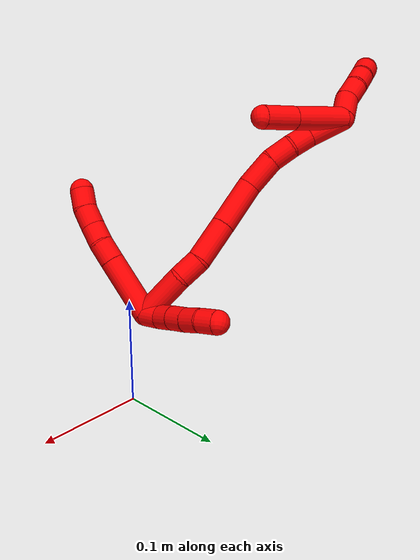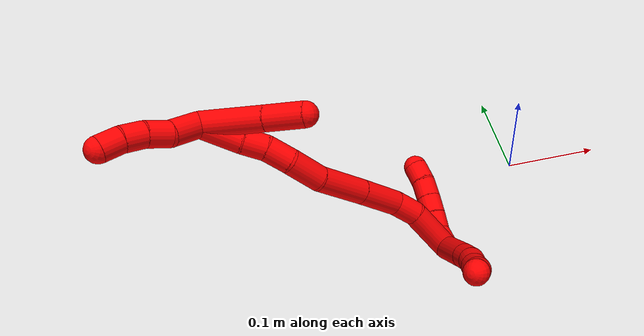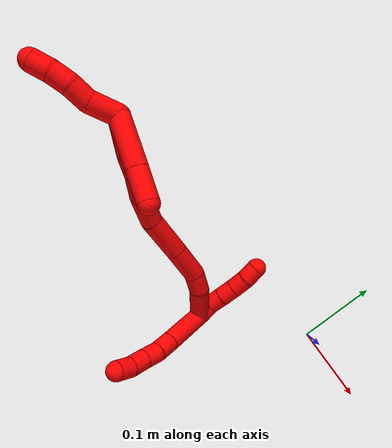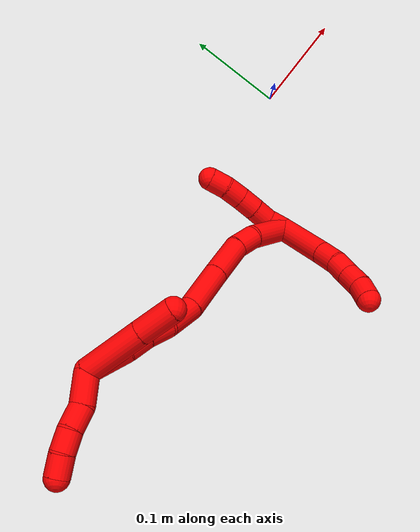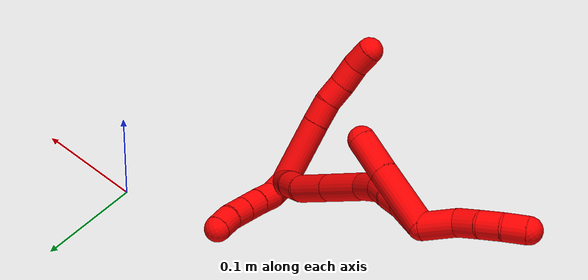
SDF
<sdf version="1.7">
 <world name="default">
  <model name="2">
   <static>0</static>
   <link name="2">
    <collision name="collision-cylinder-e_1_2_8">
     <pose>0.016877 -0.012979 0.024154 0.49307 0.55174 0.14224</pose>
     <geometry><cylinder><radius>0.0125</radius><length>0.064397</length></cylinder></geometry>
     <surface>
      <friction><ode><mu>1.16</mu><mu2>1.16</mu2><slip1>0</slip1><slip2>0</slip2></ode></friction>
      <contact><ode><kp>1e+06</kp><kd>1</kd><max_vel>0</max_vel><min_depth>0.001</min_depth></ode></contact>
     </surface>
    </collision>
    <visual name="visual-cylinder-e_1_2_8">
     <pose>0.016877 -0.012979 0.024154 0.49307 0.55174 0.14224</pose>
     <geometry><cylinder><radius>0.0125</radius><length>0.064397</length></cylinder></geometry>
     <material><ambient>1 0 0 1</ambient></material>
    </visual>
    <collision name="collision-cylinder-e_2_8_9">
     <pose>0.039417 -0.030623 0.056951 0.494927 0.522995 0.135021</pose>
     <geometry><cylinder><radius>0.0125</radius><length>0.022672</length></cylinder></geometry>
     <surface>
      <friction><ode><mu>1.16</mu><mu2>1.16</mu2><slip1>0</slip1><slip2>0</slip2></ode></friction>
      <contact><ode><kp>1e+06</kp><kd>1</kd><max_vel>0</max_vel><min_depth>0.001</min_depth></ode></contact>
     </surface>
    </collision>
    <visual name="visual-cylinder-e_2_8_9">
     <pose>0.039417 -0.030623 0.056951 0.494927 0.522995 0.135021</pose>
     <geometry><cylinder><radius>0.0125</radius><length>0.022672</length></cylinder></geometry>
     <material><ambient>1 0 0 1</ambient></material>
    </visual>
    <collision name="collision-cylinder-e_3_9_10">
     <pose>0.048563 -0.039375 0.074345 0.437 0.346146 0.077598</pose>
     <geometry><cylinder><radius>0.0125</radius><length>0.020538</length></cylinder></geometry>
     <surface>
      <friction><ode><mu>1.16</mu><mu2>1.16</mu2><slip1>0</slip1><slip2>0</slip2></ode></friction>
      <contact><ode><kp>1e+06</kp><kd>1</kd><max_vel>0</max_vel><min_depth>0.001</min_depth></ode></contact>
     </surface>
    </collision>
    <visual name="visual-cylinder-e_3_9_10">
     <pose>0.048563 -0.039375 0.074345 0.437 0.346146 0.077598</pose>
     <geometry><cylinder><radius>0.0125</radius><length>0.020538</length></cylinder></geometry>
     <material><ambient>1 0 0 1</ambient></material>
    </visual>
    <collision name="collision-cylinder-e_4_10_11">
     <pose>0.056585 -0.04706 0.092208 0.375941 0.433829 0.083791</pose>
     <geometry><cylinder><radius>0.0125</radius><length>0.02159</length></cylinder></geometry>
     <surface>
      <friction><ode><mu>1.16</mu><mu2>1.16</mu2><slip1>0</slip1><slip2>0</slip2></ode></friction>
      <contact><ode><kp>1e+06</kp><kd>1</kd><max_vel>0</max_vel><min_depth>0.001</min_depth></ode></contact>
     </surface>
    </collision>
    <visual name="visual-cylinder-e_4_10_11">
     <pose>0.056585 -0.04706 0.092208 0.375941 0.433829 0.083791</pose>
     <geometry><cylinder><radius>0.0125</radius><length>0.02159</length></cylinder></geometry>
     <material><ambient>1 0 0 1</ambient></material>
    </visual>
    <collision name="collision-cylinder-e_5_11_6">
     <pose>0.064417 -0.05215 0.111072 0.152048 0.322289 0.024762</pose>
     <geometry><cylinder><radius>0.0125</radius><length>0.020803</length></cylinder></geometry>
     <surface>
      <friction><ode><mu>1.16</mu><mu2>1.16</mu2><slip1>0</slip1><slip2>0</slip2></ode></friction>
      <contact><ode><kp>1e+06</kp><kd>1</kd><max_vel>0</max_vel><min_depth>0.001</min_depth></ode></contact>
     </surface>
    </collision>
    <visual name="visual-cylinder-e_5_11_6">
     <pose>0.064417 -0.05215 0.111072 0.152048 0.322289 0.024762</pose>
     <geometry><cylinder><radius>0.0125</radius><length>0.020803</length></cylinder></geometry>
     <material><ambient>1 0 0 1</ambient></material>
    </visual>
    <collision name="collision-cylinder-e_1_2_12">
     <pose>-0.000356 0.009503 -0.003093 -1.88544 -0.035581 0.048993</pose>
     <geometry><cylinder><radius>0.0125</radius><length>0.02</length></cylinder></geometry>
     <surface>
      <friction><ode><mu>1.16</mu><mu2>1.16</mu2><slip1>0</slip1><slip2>0</slip2></ode></friction>
      <contact><ode><kp>1e+06</kp><kd>1</kd><max_vel>0</max_vel><min_depth>0.001</min_depth></ode></contact>
     </surface>
    </collision>
    <visual name="visual-cylinder-e_1_2_12">
     <pose>-0.000356 0.009503 -0.003093 -1.88544 -0.035581 0.048993</pose>
     <geometry><cylinder><radius>0.0125</radius><length>0.02</length></cylinder></geometry>
     <material><ambient>1 0 0 1</ambient></material>
    </visual>
    <collision name="collision-cylinder-e_2_12_13">
     <pose>0.001521 0.028246 -0.009291 -1.89504 0.225188 -0.312028</pose>
     <geometry><cylinder><radius>0.0125</radius><length>0.02</length></cylinder></geometry>
     <surface>
      <friction><ode><mu>1.16</mu><mu2>1.16</mu2><slip1>0</slip1><slip2>0</slip2></ode></friction>
      <contact><ode><kp>1e+06</kp><kd>1</kd><max_vel>0</max_vel><min_depth>0.001</min_depth></ode></contact>
     </surface>
    </collision>
    <visual name="visual-cylinder-e_2_12_13">
     <pose>0.001521 0.028246 -0.009291 -1.89504 0.225188 -0.312028</pose>
     <geometry><cylinder><radius>0.0125</radius><length>0.02</length></cylinder></geometry>
     <material><ambient>1 0 0 1</ambient></material>
    </visual>
    <collision name="collision-cylinder-e_3_13_14">
     <pose>0.005555 0.046759 -0.015675 -1.91058 0.181104 -0.255412</pose>
     <geometry><cylinder><radius>0.0125</radius><length>0.02</length></cylinder></geometry>
     <surface>
      <friction><ode><mu>1.16</mu><mu2>1.16</mu2><slip1>0</slip1><slip2>0</slip2></ode></friction>
      <contact><ode><kp>1e+06</kp><kd>1</kd><max_vel>0</max_vel><min_depth>0.001</min_depth></ode></contact>
     </surface>
    </collision>
    <visual name="visual-cylinder-e_3_13_14">
     <pose>0.005555 0.046759 -0.015675 -1.91058 0.181104 -0.255412</pose>
     <geometry><cylinder><radius>0.0125</radius><length>0.02</length></cylinder></geometry>
     <material><ambient>1 0 0 1</ambient></material>
    </visual>
    <collision name="collision-cylinder-e_4_14_15">
     <pose>0.00923 0.065503 -0.021565 -1.83994 0.188484 -0.246985</pose>
     <geometry><cylinder><radius>0.0125</radius><length>0.02</length></cylinder></geometry>
     <surface>
      <friction><ode><mu>1.16</mu><mu2>1.16</mu2><slip1>0</slip1><slip2>0</slip2></ode></friction>
      <contact><ode><kp>1e+06</kp><kd>1</kd><max_vel>0</max_vel><min_depth>0.001</min_depth></ode></contact>
     </surface>
    </collision>
    <visual name="visual-cylinder-e_4_14_15">
     <pose>0.00923 0.065503 -0.021565 -1.83994 0.188484 -0.246985</pose>
     <geometry><cylinder><radius>0.0125</radius><length>0.02</length></cylinder></geometry>
     <material><ambient>1 0 0 1</ambient></material>
    </visual>
    <collision name="collision-cylinder-e_5_15_5">
     <pose>0.011247 0.084649 -0.026694 -1.82527 0.014296 -0.01849</pose>
     <geometry><cylinder><radius>0.0125</radius><length>0.02</length></cylinder></geometry>
     <surface>
      <friction><ode><mu>1.16</mu><mu2>1.16</mu2><slip1>0</slip1><slip2>0</slip2></ode></friction>
      <contact><ode><kp>1e+06</kp><kd>1</kd><max_vel>0</max_vel><min_depth>0.001</min_depth></ode></contact>
     </surface>
    </collision>
    <visual name="visual-cylinder-e_5_15_5">
     <pose>0.011247 0.084649 -0.026694 -1.82527 0.014296 -0.01849</pose>
     <geometry><cylinder><radius>0.0125</radius><length>0.02</length></cylinder></geometry>
     <material><ambient>1 0 0 1</ambient></material>
    </visual>
    <collision name="collision-cylinder-e_1_2_16">
     <pose>0.00378 0.021214 0.015333 -0.944963 0.143418 -0.073392</pose>
     <geometry><cylinder><radius>0.0125</radius><length>0.052893</length></cylinder></geometry>
     <surface>
      <friction><ode><mu>1.16</mu><mu2>1.16</mu2><slip1>0</slip1><slip2>0</slip2></ode></friction>
      <contact><ode><kp>1e+06</kp><kd>1</kd><max_vel>0</max_vel><min_depth>0.001</min_depth></ode></contact>
     </surface>
    </collision>
    <visual name="visual-cylinder-e_1_2_16">
     <pose>0.00378 0.021214 0.015333 -0.944963 0.143418 -0.073392</pose>
     <geometry><cylinder><radius>0.0125</radius><length>0.052893</length></cylinder></geometry>
     <material><ambient>1 0 0 1</ambient></material>
    </visual>
    <collision name="collision-cylinder-e_2_16_17">
     <pose>0.00616 0.05154 0.039436 -0.804463 -0.110269 0.04695</pose>
     <geometry><cylinder><radius>0.0125</radius><length>0.025448</length></cylinder></geometry>
     <surface>
      <friction><ode><mu>1.16</mu><mu2>1.16</mu2><slip1>0</slip1><slip2>0</slip2></ode></friction>
      <contact><ode><kp>1e+06</kp><kd>1</kd><max_vel>0</max_vel><min_depth>0.001</min_depth></ode></contact>
     </surface>
    </collision>
    <visual name="visual-cylinder-e_2_16_17">
     <pose>0.00616 0.05154 0.039436 -0.804463 -0.110269 0.04695</pose>
     <geometry><cylinder><radius>0.0125</radius><length>0.025448</length></cylinder></geometry>
     <material><ambient>1 0 0 1</ambient></material>
    </visual>
    <collision name="collision-cylinder-e_3_17_18">
     <pose>0.002717 0.071593 0.067598 -0.513721 -0.091454 0.024037</pose>
     <geometry><cylinder><radius>0.0125</radius><length>0.044718</length></cylinder></geometry>
     <surface>
      <friction><ode><mu>1.16</mu><mu2>1.16</mu2><slip1>0</slip1><slip2>0</slip2></ode></friction>
      <contact><ode><kp>1e+06</kp><kd>1</kd><max_vel>0</max_vel><min_depth>0.001</min_depth></ode></contact>
     </surface>
    </collision>
    <visual name="visual-cylinder-e_3_17_18">
     <pose>0.002717 0.071593 0.067598 -0.513721 -0.091454 0.024037</pose>
     <geometry><cylinder><radius>0.0125</radius><length>0.044718</length></cylinder></geometry>
     <material><ambient>1 0 0 1</ambient></material>
    </visual>
    <collision name="collision-cylinder-e_4_18_19">
     <pose>-0.001893 0.094754 0.109517 -0.496986 -0.099869 0.02536</pose>
     <geometry><cylinder><radius>0.0125</radius><length>0.051512</length></cylinder></geometry>
     <surface>
      <friction><ode><mu>1.16</mu><mu2>1.16</mu2><slip1>0</slip1><slip2>0</slip2></ode></friction>
      <contact><ode><kp>1e+06</kp><kd>1</kd><max_vel>0</max_vel><min_depth>0.001</min_depth></ode></contact>
     </surface>
    </collision>
    <visual name="visual-cylinder-e_4_18_19">
     <pose>-0.001893 0.094754 0.109517 -0.496986 -0.099869 0.02536</pose>
     <geometry><cylinder><radius>0.0125</radius><length>0.051512</length></cylinder></geometry>
     <material><ambient>1 0 0 1</ambient></material>
    </visual>
    <collision name="collision-cylinder-e_5_19_20">
     <pose>-0.004697 0.118763 0.145216 -0.730116 -0.013382 0.005115</pose>
     <geometry><cylinder><radius>0.0125</radius><length>0.035358</length></cylinder></geometry>
     <surface>
      <friction><ode><mu>1.16</mu><mu2>1.16</mu2><slip1>0</slip1><slip2>0</slip2></ode></friction>
      <contact><ode><kp>1e+06</kp><kd>1</kd><max_vel>0</max_vel><min_depth>0.001</min_depth></ode></contact>
     </surface>
    </collision>
    <visual name="visual-cylinder-e_5_19_20">
     <pose>-0.004697 0.118763 0.145216 -0.730116 -0.013382 0.005115</pose>
     <geometry><cylinder><radius>0.0125</radius><length>0.035358</length></cylinder></geometry>
     <material><ambient>1 0 0 1</ambient></material>
    </visual>
    <collision name="collision-cylinder-e_6_20_21">
     <pose>-0.007072 0.140562 0.166001 -0.920513 -0.16841 0.083642</pose>
     <geometry><cylinder><radius>0.0125</radius><length>0.025512</length></cylinder></geometry>
     <surface>
      <friction><ode><mu>1.16</mu><mu2>1.16</mu2><slip1>0</slip1><slip2>0</slip2></ode></friction>
      <contact><ode><kp>1e+06</kp><kd>1</kd><max_vel>0</max_vel><min_depth>0.001</min_depth></ode></contact>
     </surface>
    </collision>
    <visual name="visual-cylinder-e_6_20_21">
     <pose>-0.007072 0.140562 0.166001 -0.920513 -0.16841 0.083642</pose>
     <geometry><cylinder><radius>0.0125</radius><length>0.025512</length></cylinder></geometry>
     <material><ambient>1 0 0 1</ambient></material>
    </visual>
    <collision name="collision-cylinder-e_7_21_22">
     <pose>-0.013237 0.158214 0.180826 -0.814444 -0.36595 0.159294</pose>
     <geometry><cylinder><radius>0.0125</radius><length>0.022507</length></cylinder></geometry>
     <surface>
      <friction><ode><mu>1.16</mu><mu2>1.16</mu2><slip1>0</slip1><slip2>0</slip2></ode></friction>
      <contact><ode><kp>1e+06</kp><kd>1</kd><max_vel>0</max_vel><min_depth>0.001</min_depth></ode></contact>
     </surface>
    </collision>
    <visual name="visual-cylinder-e_7_21_22">
     <pose>-0.013237 0.158214 0.180826 -0.814444 -0.36595 0.159294</pose>
     <geometry><cylinder><radius>0.0125</radius><length>0.022507</length></cylinder></geometry>
     <material><ambient>1 0 0 1</ambient></material>
    </visual>
    <collision name="collision-cylinder-e_8_22_1">
     <pose>-0.024547 0.181867 0.199557 -0.947083 -0.353726 0.182664</pose>
     <geometry><cylinder><radius>0.0125</radius><length>0.042051</length></cylinder></geometry>
     <surface>
      <friction><ode><mu>1.16</mu><mu2>1.16</mu2><slip1>0</slip1><slip2>0</slip2></ode></friction>
      <contact><ode><kp>1e+06</kp><kd>1</kd><max_vel>0</max_vel><min_depth>0.001</min_depth></ode></contact>
     </surface>
    </collision>
    <visual name="visual-cylinder-e_8_22_1">
     <pose>-0.024547 0.181867 0.199557 -0.947083 -0.353726 0.182664</pose>
     <geometry><cylinder><radius>0.0125</radius><length>0.042051</length></cylinder></geometry>
     <material><ambient>1 0 0 1</ambient></material>
    </visual>
    <collision name="collision-cylinder-e_1_1_23">
     <pose>-0.007723 0.181681 0.19997 2.1719 0.887189 1.46788</pose>
     <geometry><cylinder><radius>0.0125</radius><length>0.062187</length></cylinder></geometry>
     <surface>
      <friction><ode><mu>1.16</mu><mu2>1.16</mu2><slip1>0</slip1><slip2>0</slip2></ode></friction>
      <contact><ode><kp>1e+06</kp><kd>1</kd><max_vel>0</max_vel><min_depth>0.001</min_depth></ode></contact>
     </surface>
    </collision>
    <visual name="visual-cylinder-e_1_1_23">
     <pose>-0.007723 0.181681 0.19997 2.1719 0.887189 1.46788</pose>
     <geometry><cylinder><radius>0.0125</radius><length>0.062187</length></cylinder></geometry>
     <material><ambient>1 0 0 1</ambient></material>
    </visual>
    <collision name="collision-cylinder-e_2_23_4">
     <pose>0.031198 0.155652 0.182437 2.14966 0.900372 1.45808</pose>
     <geometry><cylinder><radius>0.0125</radius><length>0.037813</length></cylinder></geometry>
     <surface>
      <friction><ode><mu>1.16</mu><mu2>1.16</mu2><slip1>0</slip1><slip2>0</slip2></ode></friction>
      <contact><ode><kp>1e+06</kp><kd>1</kd><max_vel>0</max_vel><min_depth>0.001</min_depth></ode></contact>
     </surface>
    </collision>
    <visual name="visual-cylinder-e_2_23_4">
     <pose>0.031198 0.155652 0.182437 2.14966 0.900372 1.45808</pose>
     <geometry><cylinder><radius>0.0125</radius><length>0.037813</length></cylinder></geometry>
     <material><ambient>1 0 0 1</ambient></material>
    </visual>
    <collision name="collision-cylinder-e_1_1_24">
     <pose>-0.036888 0.197183 0.226876 0.043934 -0.309561 -0.006856</pose>
     <geometry><cylinder><radius>0.0125</radius><length>0.033208</length></cylinder></geometry>
     <surface>
      <friction><ode><mu>1.16</mu><mu2>1.16</mu2><slip1>0</slip1><slip2>0</slip2></ode></friction>
      <contact><ode><kp>1e+06</kp><kd>1</kd><max_vel>0</max_vel><min_depth>0.001</min_depth></ode></contact>
     </surface>
    </collision>
    <visual name="visual-cylinder-e_1_1_24">
     <pose>-0.036888 0.197183 0.226876 0.043934 -0.309561 -0.006856</pose>
     <geometry><cylinder><radius>0.0125</radius><length>0.033208</length></cylinder></geometry>
     <material><ambient>1 0 0 1</ambient></material>
    </visual>
    <collision name="collision-cylinder-e_2_24_25">
     <pose>-0.045701 0.199817 0.253323 -0.30305 -0.324626 0.049998</pose>
     <geometry><cylinder><radius>0.0125</radius><length>0.023539</length></cylinder></geometry>
     <surface>
      <friction><ode><mu>1.16</mu><mu2>1.16</mu2><slip1>0</slip1><slip2>0</slip2></ode></friction>
      <contact><ode><kp>1e+06</kp><kd>1</kd><max_vel>0</max_vel><min_depth>0.001</min_depth></ode></contact>
     </surface>
    </collision>
    <visual name="visual-cylinder-e_2_24_25">
     <pose>-0.045701 0.199817 0.253323 -0.30305 -0.324626 0.049998</pose>
     <geometry><cylinder><radius>0.0125</radius><length>0.023539</length></cylinder></geometry>
     <material><ambient>1 0 0 1</ambient></material>
    </visual>
    <collision name="collision-cylinder-e_3_25_26">
     <pose>-0.054097 0.204407 0.273642 -0.129637 -0.444242 0.029317</pose>
     <geometry><cylinder><radius>0.0125</radius><length>0.021606</length></cylinder></geometry>
     <surface>
      <friction><ode><mu>1.16</mu><mu2>1.16</mu2><slip1>0</slip1><slip2>0</slip2></ode></friction>
      <contact><ode><kp>1e+06</kp><kd>1</kd><max_vel>0</max_vel><min_depth>0.001</min_depth></ode></contact>
     </surface>
    </collision>
    <visual name="visual-cylinder-e_3_25_26">
     <pose>-0.054097 0.204407 0.273642 -0.129637 -0.444242 0.029317</pose>
     <geometry><cylinder><radius>0.0125</radius><length>0.021606</length></cylinder></geometry>
     <material><ambient>1 0 0 1</ambient></material>
    </visual>
    <collision name="collision-cylinder-e_4_26_3">
     <pose>-0.064529 0.205338 0.292453 0.036171 -0.564374 -0.010488</pose>
     <geometry><cylinder><radius>0.0125</radius><length>0.021647</length></cylinder></geometry>
     <surface>
      <friction><ode><mu>1.16</mu><mu2>1.16</mu2><slip1>0</slip1><slip2>0</slip2></ode></friction>
      <contact><ode><kp>1e+06</kp><kd>1</kd><max_vel>0</max_vel><min_depth>0.001</min_depth></ode></contact>
     </surface>
    </collision>
    <visual name="visual-cylinder-e_4_26_3">
     <pose>-0.064529 0.205338 0.292453 0.036171 -0.564374 -0.010488</pose>
     <geometry><cylinder><radius>0.0125</radius><length>0.021647</length></cylinder></geometry>
     <material><ambient>1 0 0 1</ambient></material>
    </visual>
    <collision name="collision-sphere-3">
     <pose>-0.070319 0.205007 0.301592 0 -0 0</pose>
     <geometry><sphere><radius>0.0125</radius></sphere></geometry>
     <surface>
      <friction><ode><mu>1.16</mu><mu2>1.16</mu2><slip1>0</slip1><slip2>0</slip2></ode></friction>
      <contact><ode><kp>1e+06</kp><kd>1</kd><max_vel>0</max_vel><min_depth>0.001</min_depth></ode></contact>
     </surface>
    </collision>
    <visual name="visual-sphere-3">
     <pose>-0.070319 0.205007 0.301592 0 -0 0</pose>
     <geometry><sphere><radius>0.0125</radius></sphere></geometry>
     <material><ambient>1 0 0 1</ambient></material>
    </visual>
    <collision name="collision-sphere-26">
     <pose>-0.05874 0.205668 0.283314 0 -0 0</pose>
     <geometry><sphere><radius>0.0125</radius></sphere></geometry>
     <surface>
      <friction><ode><mu>1.16</mu><mu2>1.16</mu2><slip1>0</slip1><slip2>0</slip2></ode></friction>
      <contact><ode><kp>1e+06</kp><kd>1</kd><max_vel>0</max_vel><min_depth>0.001</min_depth></ode></contact>
     </surface>
    </collision>
    <visual name="visual-sphere-26">
     <pose>-0.05874 0.205668 0.283314 0 -0 0</pose>
     <geometry><sphere><radius>0.0125</radius></sphere></geometry>
     <material><ambient>1 0 0 1</ambient></material>
    </visual>
    <collision name="collision-sphere-25">
     <pose>-0.049455 0.203146 0.263969 0 -0 0</pose>
     <geometry><sphere><radius>0.0125</radius></sphere></geometry>
     <surface>
      <friction><ode><mu>1.16</mu><mu2>1.16</mu2><slip1>0</slip1><slip2>0</slip2></ode></friction>
      <contact><ode><kp>1e+06</kp><kd>1</kd><max_vel>0</max_vel><min_depth>0.001</min_depth></ode></contact>
     </surface>
    </collision>
    <visual name="visual-sphere-25">
     <pose>-0.049455 0.203146 0.263969 0 -0 0</pose>
     <geometry><sphere><radius>0.0125</radius></sphere></geometry>
     <material><ambient>1 0 0 1</ambient></material>
    </visual>
    <collision name="collision-sphere-24">
     <pose>-0.041947 0.196488 0.242676 0 -0 0</pose>
     <geometry><sphere><radius>0.0125</radius></sphere></geometry>
     <surface>
      <friction><ode><mu>1.16</mu><mu2>1.16</mu2><slip1>0</slip1><slip2>0</slip2></ode></friction>
      <contact><ode><kp>1e+06</kp><kd>1</kd><max_vel>0</max_vel><min_depth>0.001</min_depth></ode></contact>
     </surface>
    </collision>
    <visual name="visual-sphere-24">
     <pose>-0.041947 0.196488 0.242676 0 -0 0</pose>
     <geometry><sphere><radius>0.0125</radius></sphere></geometry>
     <material><ambient>1 0 0 1</ambient></material>
    </visual>
    <collision name="collision-sphere-4">
     <pose>0.046012 0.145819 0.176011 0 -0 0</pose>
     <geometry><sphere><radius>0.0125</radius></sphere></geometry>
     <surface>
      <friction><ode><mu>1.16</mu><mu2>1.16</mu2><slip1>0</slip1><slip2>0</slip2></ode></friction>
      <contact><ode><kp>1e+06</kp><kd>1</kd><max_vel>0</max_vel><min_depth>0.001</min_depth></ode></contact>
     </surface>
    </collision>
    <visual name="visual-sphere-4">
     <pose>0.046012 0.145819 0.176011 0 -0 0</pose>
     <geometry><sphere><radius>0.0125</radius></sphere></geometry>
     <material><ambient>1 0 0 1</ambient></material>
    </visual>
    <collision name="collision-sphere-23">
     <pose>0.016383 0.165485 0.188864 0 -0 0</pose>
     <geometry><sphere><radius>0.0125</radius></sphere></geometry>
     <surface>
      <friction><ode><mu>1.16</mu><mu2>1.16</mu2><slip1>0</slip1><slip2>0</slip2></ode></friction>
      <contact><ode><kp>1e+06</kp><kd>1</kd><max_vel>0</max_vel><min_depth>0.001</min_depth></ode></contact>
     </surface>
    </collision>
    <visual name="visual-sphere-23">
     <pose>0.016383 0.165485 0.188864 0 -0 0</pose>
     <geometry><sphere><radius>0.0125</radius></sphere></geometry>
     <material><ambient>1 0 0 1</ambient></material>
    </visual>
    <collision name="collision-sphere-1">
     <pose>-0.03183 0.197877 0.211077 0 -0 0</pose>
     <geometry><sphere><radius>0.0125</radius></sphere></geometry>
     <surface>
      <friction><ode><mu>1.16</mu><mu2>1.16</mu2><slip1>0</slip1><slip2>0</slip2></ode></friction>
      <contact><ode><kp>1e+06</kp><kd>1</kd><max_vel>0</max_vel><min_depth>0.001</min_depth></ode></contact>
     </surface>
    </collision>
    <visual name="visual-sphere-1">
     <pose>-0.03183 0.197877 0.211077 0 -0 0</pose>
     <geometry><sphere><radius>0.0125</radius></sphere></geometry>
     <material><ambient>1 0 0 1</ambient></material>
    </visual>
    <collision name="collision-sphere-22">
     <pose>-0.017264 0.165857 0.188037 0 -0 0</pose>
     <geometry><sphere><radius>0.0125</radius></sphere></geometry>
     <surface>
      <friction><ode><mu>1.16</mu><mu2>1.16</mu2><slip1>0</slip1><slip2>0</slip2></ode></friction>
      <contact><ode><kp>1e+06</kp><kd>1</kd><max_vel>0</max_vel><min_depth>0.001</min_depth></ode></contact>
     </surface>
    </collision>
    <visual name="visual-sphere-22">
     <pose>-0.017264 0.165857 0.188037 0 -0 0</pose>
     <geometry><sphere><radius>0.0125</radius></sphere></geometry>
     <material><ambient>1 0 0 1</ambient></material>
    </visual>
    <collision name="collision-sphere-21">
     <pose>-0.00921 0.150571 0.173614 0 -0 0</pose>
     <geometry><sphere><radius>0.0125</radius></sphere></geometry>
     <surface>
      <friction><ode><mu>1.16</mu><mu2>1.16</mu2><slip1>0</slip1><slip2>0</slip2></ode></friction>
      <contact><ode><kp>1e+06</kp><kd>1</kd><max_vel>0</max_vel><min_depth>0.001</min_depth></ode></contact>
     </surface>
    </collision>
    <visual name="visual-sphere-21">
     <pose>-0.00921 0.150571 0.173614 0 -0 0</pose>
     <geometry><sphere><radius>0.0125</radius></sphere></geometry>
     <material><ambient>1 0 0 1</ambient></material>
    </visual>
    <collision name="collision-sphere-6">
     <pose>0.067711 -0.053645 0.120824 0 -0 0</pose>
     <geometry><sphere><radius>0.0125</radius></sphere></geometry>
     <surface>
      <friction><ode><mu>1.16</mu><mu2>1.16</mu2><slip1>0</slip1><slip2>0</slip2></ode></friction>
      <contact><ode><kp>1e+06</kp><kd>1</kd><max_vel>0</max_vel><min_depth>0.001</min_depth></ode></contact>
     </surface>
    </collision>
    <visual name="visual-sphere-6">
     <pose>0.067711 -0.053645 0.120824 0 -0 0</pose>
     <geometry><sphere><radius>0.0125</radius></sphere></geometry>
     <material><ambient>1 0 0 1</ambient></material>
    </visual>
    <collision name="collision-sphere-11">
     <pose>0.061122 -0.050656 0.101319 0 -0 0</pose>
     <geometry><sphere><radius>0.0125</radius></sphere></geometry>
     <surface>
      <friction><ode><mu>1.16</mu><mu2>1.16</mu2><slip1>0</slip1><slip2>0</slip2></ode></friction>
      <contact><ode><kp>1e+06</kp><kd>1</kd><max_vel>0</max_vel><min_depth>0.001</min_depth></ode></contact>
     </surface>
    </collision>
    <visual name="visual-sphere-11">
     <pose>0.061122 -0.050656 0.101319 0 -0 0</pose>
     <geometry><sphere><radius>0.0125</radius></sphere></geometry>
     <material><ambient>1 0 0 1</ambient></material>
    </visual>
    <collision name="collision-sphere-10">
     <pose>0.052047 -0.043464 0.083097 0 -0 0</pose>
     <geometry><sphere><radius>0.0125</radius></sphere></geometry>
     <surface>
      <friction><ode><mu>1.16</mu><mu2>1.16</mu2><slip1>0</slip1><slip2>0</slip2></ode></friction>
      <contact><ode><kp>1e+06</kp><kd>1</kd><max_vel>0</max_vel><min_depth>0.001</min_depth></ode></contact>
     </surface>
    </collision>
    <visual name="visual-sphere-10">
     <pose>0.052047 -0.043464 0.083097 0 -0 0</pose>
     <geometry><sphere><radius>0.0125</radius></sphere></geometry>
     <material><ambient>1 0 0 1</ambient></material>
    </visual>
    <collision name="collision-sphere-9">
     <pose>0.045079 -0.035287 0.065593 0 -0 0</pose>
     <geometry><sphere><radius>0.0125</radius></sphere></geometry>
     <surface>
      <friction><ode><mu>1.16</mu><mu2>1.16</mu2><slip1>0</slip1><slip2>0</slip2></ode></friction>
      <contact><ode><kp>1e+06</kp><kd>1</kd><max_vel>0</max_vel><min_depth>0.001</min_depth></ode></contact>
     </surface>
    </collision>
    <visual name="visual-sphere-9">
     <pose>0.045079 -0.035287 0.065593 0 -0 0</pose>
     <geometry><sphere><radius>0.0125</radius></sphere></geometry>
     <material><ambient>1 0 0 1</ambient></material>
    </visual>
    <collision name="collision-sphere-2">
     <geometry><sphere><radius>0.0125</radius></sphere></geometry>
     <surface>
      <friction><ode><mu>1.16</mu><mu2>1.16</mu2><slip1>0</slip1><slip2>0</slip2></ode></friction>
      <contact><ode><kp>1e+06</kp><kd>1</kd><max_vel>0</max_vel><min_depth>0.001</min_depth></ode></contact>
     </surface>
    </collision>
    <visual name="visual-sphere-2">
     <geometry><sphere><radius>0.0125</radius></sphere></geometry>
     <material><ambient>1 0 0 1</ambient></material>
    </visual>
    <collision name="collision-sphere-19">
     <pose>-0.004461 0.106973 0.132045 0 -0 0</pose>
     <geometry><sphere><radius>0.0125</radius></sphere></geometry>
     <surface>
      <friction><ode><mu>1.16</mu><mu2>1.16</mu2><slip1>0</slip1><slip2>0</slip2></ode></friction>
      <contact><ode><kp>1e+06</kp><kd>1</kd><max_vel>0</max_vel><min_depth>0.001</min_depth></ode></contact>
     </surface>
    </collision>
    <visual name="visual-sphere-19">
     <pose>-0.004461 0.106973 0.132045 0 -0 0</pose>
     <geometry><sphere><radius>0.0125</radius></sphere></geometry>
     <material><ambient>1 0 0 1</ambient></material>
    </visual>
    <collision name="collision-sphere-8">
     <pose>0.033755 -0.025958 0.048309 0 -0 0</pose>
     <geometry><sphere><radius>0.0125</radius></sphere></geometry>
     <surface>
      <friction><ode><mu>1.16</mu><mu2>1.16</mu2><slip1>0</slip1><slip2>0</slip2></ode></friction>
      <contact><ode><kp>1e+06</kp><kd>1</kd><max_vel>0</max_vel><min_depth>0.001</min_depth></ode></contact>
     </surface>
    </collision>
    <visual name="visual-sphere-8">
     <pose>0.033755 -0.025958 0.048309 0 -0 0</pose>
     <geometry><sphere><radius>0.0125</radius></sphere></geometry>
     <material><ambient>1 0 0 1</ambient></material>
    </visual>
    <collision name="collision-sphere-12">
     <pose>-0.000711 0.019006 -0.006186 0 -0 0</pose>
     <geometry><sphere><radius>0.0125</radius></sphere></geometry>
     <surface>
      <friction><ode><mu>1.16</mu><mu2>1.16</mu2><slip1>0</slip1><slip2>0</slip2></ode></friction>
      <contact><ode><kp>1e+06</kp><kd>1</kd><max_vel>0</max_vel><min_depth>0.001</min_depth></ode></contact>
     </surface>
    </collision>
    <visual name="visual-sphere-12">
     <pose>-0.000711 0.019006 -0.006186 0 -0 0</pose>
     <geometry><sphere><radius>0.0125</radius></sphere></geometry>
     <material><ambient>1 0 0 1</ambient></material>
    </visual>
    <collision name="collision-sphere-13">
     <pose>0.003754 0.037485 -0.012397 0 -0 0</pose>
     <geometry><sphere><radius>0.0125</radius></sphere></geometry>
     <surface>
      <friction><ode><mu>1.16</mu><mu2>1.16</mu2><slip1>0</slip1><slip2>0</slip2></ode></friction>
      <contact><ode><kp>1e+06</kp><kd>1</kd><max_vel>0</max_vel><min_depth>0.001</min_depth></ode></contact>
     </surface>
    </collision>
    <visual name="visual-sphere-13">
     <pose>0.003754 0.037485 -0.012397 0 -0 0</pose>
     <geometry><sphere><radius>0.0125</radius></sphere></geometry>
     <material><ambient>1 0 0 1</ambient></material>
    </visual>
    <collision name="collision-sphere-14">
     <pose>0.007357 0.056033 -0.018953 0 -0 0</pose>
     <geometry><sphere><radius>0.0125</radius></sphere></geometry>
     <surface>
      <friction><ode><mu>1.16</mu><mu2>1.16</mu2><slip1>0</slip1><slip2>0</slip2></ode></friction>
      <contact><ode><kp>1e+06</kp><kd>1</kd><max_vel>0</max_vel><min_depth>0.001</min_depth></ode></contact>
     </surface>
    </collision>
    <visual name="visual-sphere-14">
     <pose>0.007357 0.056033 -0.018953 0 -0 0</pose>
     <geometry><sphere><radius>0.0125</radius></sphere></geometry>
     <material><ambient>1 0 0 1</ambient></material>
    </visual>
    <collision name="collision-sphere-15">
     <pose>0.011104 0.074972 -0.024177 0 -0 0</pose>
     <geometry><sphere><radius>0.0125</radius></sphere></geometry>
     <surface>
      <friction><ode><mu>1.16</mu><mu2>1.16</mu2><slip1>0</slip1><slip2>0</slip2></ode></friction>
      <contact><ode><kp>1e+06</kp><kd>1</kd><max_vel>0</max_vel><min_depth>0.001</min_depth></ode></contact>
     </surface>
    </collision>
    <visual name="visual-sphere-15">
     <pose>0.011104 0.074972 -0.024177 0 -0 0</pose>
     <geometry><sphere><radius>0.0125</radius></sphere></geometry>
     <material><ambient>1 0 0 1</ambient></material>
    </visual>
    <collision name="collision-sphere-5">
     <pose>0.01139 0.094326 -0.029211 0 -0 0</pose>
     <geometry><sphere><radius>0.0125</radius></sphere></geometry>
     <surface>
      <friction><ode><mu>1.16</mu><mu2>1.16</mu2><slip1>0</slip1><slip2>0</slip2></ode></friction>
      <contact><ode><kp>1e+06</kp><kd>1</kd><max_vel>0</max_vel><min_depth>0.001</min_depth></ode></contact>
     </surface>
    </collision>
    <visual name="visual-sphere-5">
     <pose>0.01139 0.094326 -0.029211 0 -0 0</pose>
     <geometry><sphere><radius>0.0125</radius></sphere></geometry>
     <material><ambient>1 0 0 1</ambient></material>
    </visual>
    <collision name="collision-sphere-16">
     <pose>0.00756 0.042429 0.030665 0 -0 0</pose>
     <geometry><sphere><radius>0.0125</radius></sphere></geometry>
     <surface>
      <friction><ode><mu>1.16</mu><mu2>1.16</mu2><slip1>0</slip1><slip2>0</slip2></ode></friction>
      <contact><ode><kp>1e+06</kp><kd>1</kd><max_vel>0</max_vel><min_depth>0.001</min_depth></ode></contact>
     </surface>
    </collision>
    <visual name="visual-sphere-16">
     <pose>0.00756 0.042429 0.030665 0 -0 0</pose>
     <geometry><sphere><radius>0.0125</radius></sphere></geometry>
     <material><ambient>1 0 0 1</ambient></material>
    </visual>
    <collision name="collision-sphere-17">
     <pose>0.004759 0.060652 0.048207 0 -0 0</pose>
     <geometry><sphere><radius>0.0125</radius></sphere></geometry>
     <surface>
      <friction><ode><mu>1.16</mu><mu2>1.16</mu2><slip1>0</slip1><slip2>0</slip2></ode></friction>
      <contact><ode><kp>1e+06</kp><kd>1</kd><max_vel>0</max_vel><min_depth>0.001</min_depth></ode></contact>
     </surface>
    </collision>
    <visual name="visual-sphere-17">
     <pose>0.004759 0.060652 0.048207 0 -0 0</pose>
     <geometry><sphere><radius>0.0125</radius></sphere></geometry>
     <material><ambient>1 0 0 1</ambient></material>
    </visual>
    <collision name="collision-sphere-18">
     <pose>0.000675 0.082535 0.08699 0 -0 0</pose>
     <geometry><sphere><radius>0.0125</radius></sphere></geometry>
     <surface>
      <friction><ode><mu>1.16</mu><mu2>1.16</mu2><slip1>0</slip1><slip2>0</slip2></ode></friction>
      <contact><ode><kp>1e+06</kp><kd>1</kd><max_vel>0</max_vel><min_depth>0.001</min_depth></ode></contact>
     </surface>
    </collision>
    <visual name="visual-sphere-18">
     <pose>0.000675 0.082535 0.08699 0 -0 0</pose>
     <geometry><sphere><radius>0.0125</radius></sphere></geometry>
     <material><ambient>1 0 0 1</ambient></material>
    </visual>
    <collision name="collision-sphere-20">
     <pose>-0.004934 0.130553 0.158387 0 -0 0</pose>
     <geometry><sphere><radius>0.0125</radius></sphere></geometry>
     <surface>
      <friction><ode><mu>1.16</mu><mu2>1.16</mu2><slip1>0</slip1><slip2>0</slip2></ode></friction>
      <contact><ode><kp>1e+06</kp><kd>1</kd><max_vel>0</max_vel><min_depth>0.001</min_depth></ode></contact>
     </surface>
    </collision>
    <visual name="visual-sphere-20">
     <pose>-0.004934 0.130553 0.158387 0 -0 0</pose>
     <geometry><sphere><radius>0.0125</radius></sphere></geometry>
     <material><ambient>1 0 0 1</ambient></material>
    </visual>
    <inertial>
     <pose>0.000828 0.089414 0.11271 0 -0 0</pose>
     <mass>0.75</mass>
     <inertia><ixx>0.000129</ixx><ixy>0</ixy><ixz>0</ixz><iyy>0.000131</iyy><iyz>0</iyz><izz>-2e-05</izz></inertia>
    </inertial>
   </link>
   <pose>-0.106149 -0.100678 0.011481 0.511634 -0.801195 0.003679</pose>
  </model>
 </world>
</sdf>
